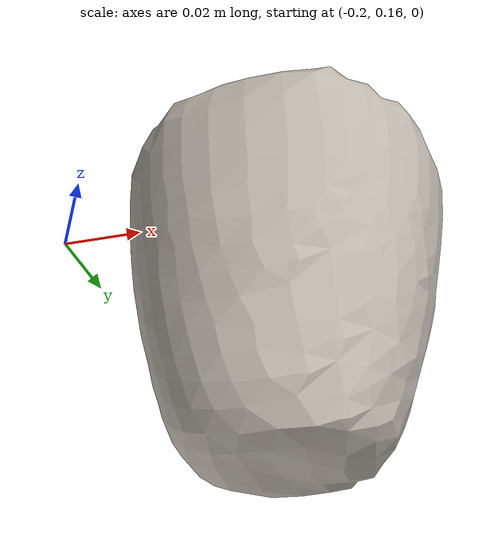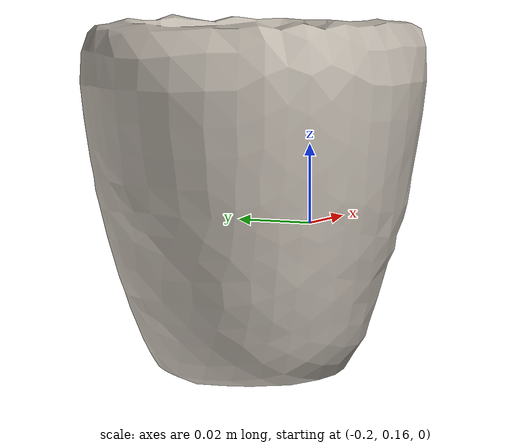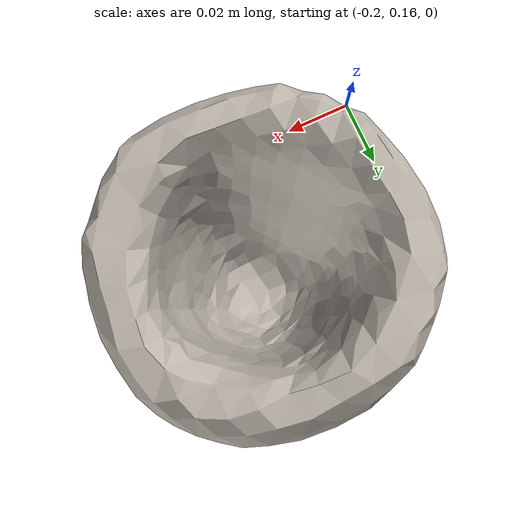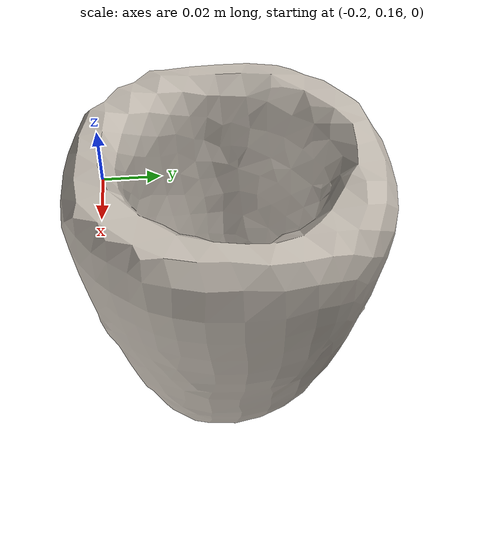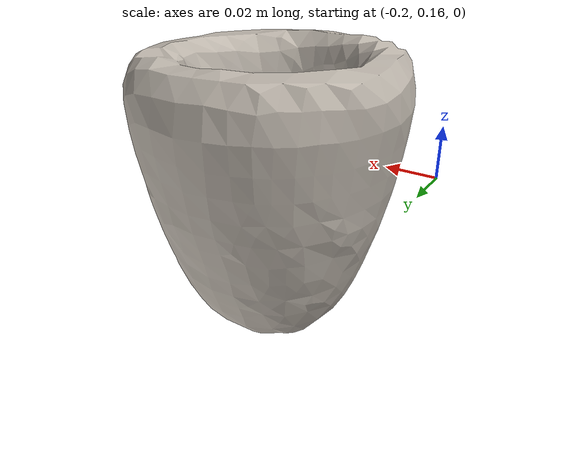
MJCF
<mujoco model="cup_Ecoforms_Cup_B4_SAN_M">
  <asset>
    <mesh file="meshes/cup_Ecoforms_Cup_B4_SAN_M.stl" name="cup_mesh" scale="1.0001700362554735 1.0001700362554735 1.0001700362554735"/>
    <texture type="cube" file="/home/jbw/Projects/gc-reorientation/bin_env/assets/textures/ceramic.png" rgb1="1 1 1" name="tex-cup"/>
    <material name="cup" reflectance="0.5" texrepeat="3 3" texture="tex-cup"/>
  </asset>
  <worldbody>
    <body>
      <body name="object">
        <geom pos="-0.15283106710847774 0.1993527699768089 0.002352701007810207" quat="1 0 0 0" mesh="cup_mesh" type="mesh" solref="0.02 1" density="0" friction="1.0 1.0 1.0" material="cup" group="0" condim="4"/>
      </body>
      <site rgba="0 0 0 0" size="0.005" pos="0 0 -0.05" name="bottom_site"/>
      <site rgba="0 0 0 0" size="0.005" pos="0 0 0.03" name="top_site"/>
      <site rgba="0 0 0 0" size="0.005" pos="0.02 0.015 0" name="horizontal_radius_site"/>
    </body>
  </worldbody>
</mujoco>
